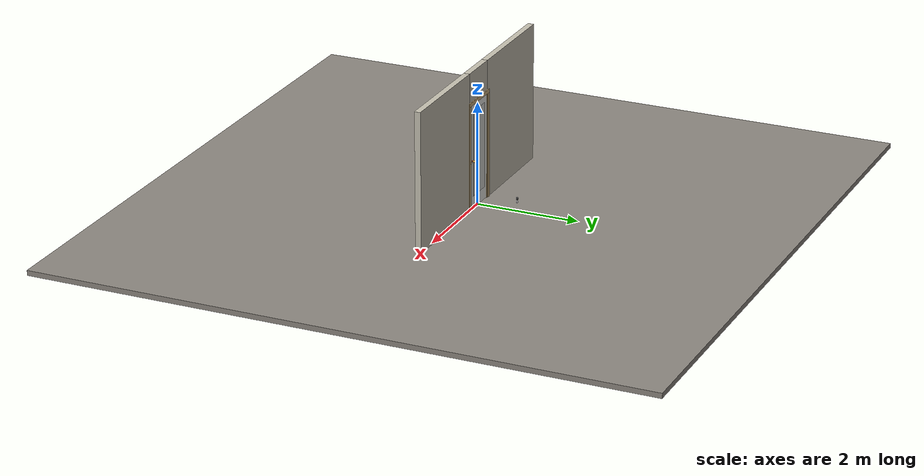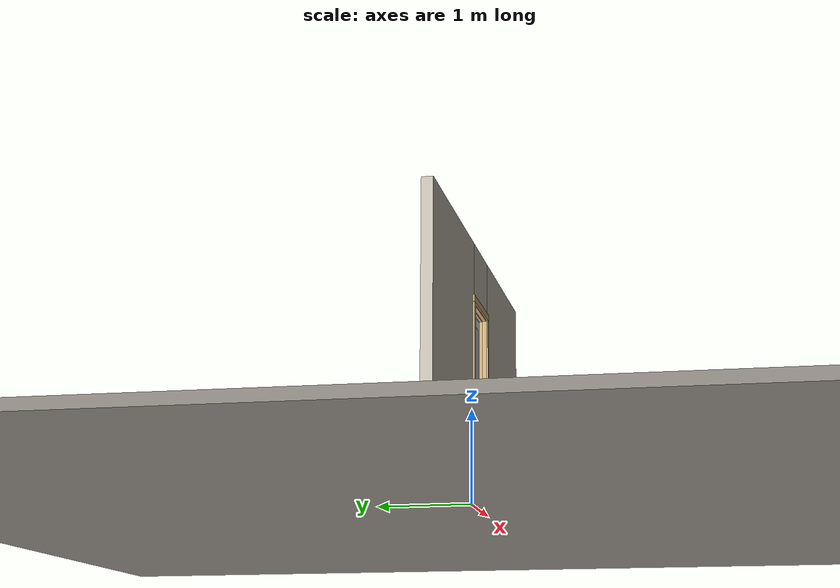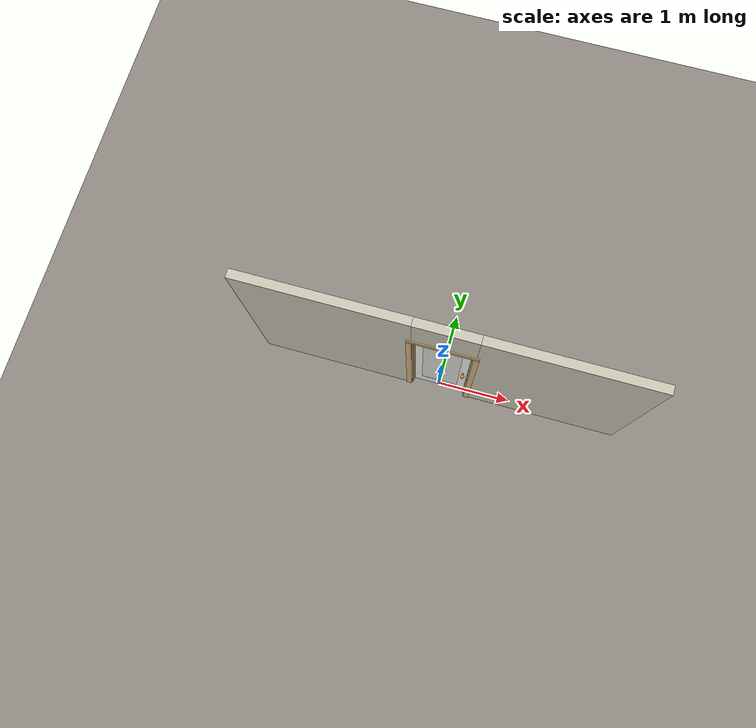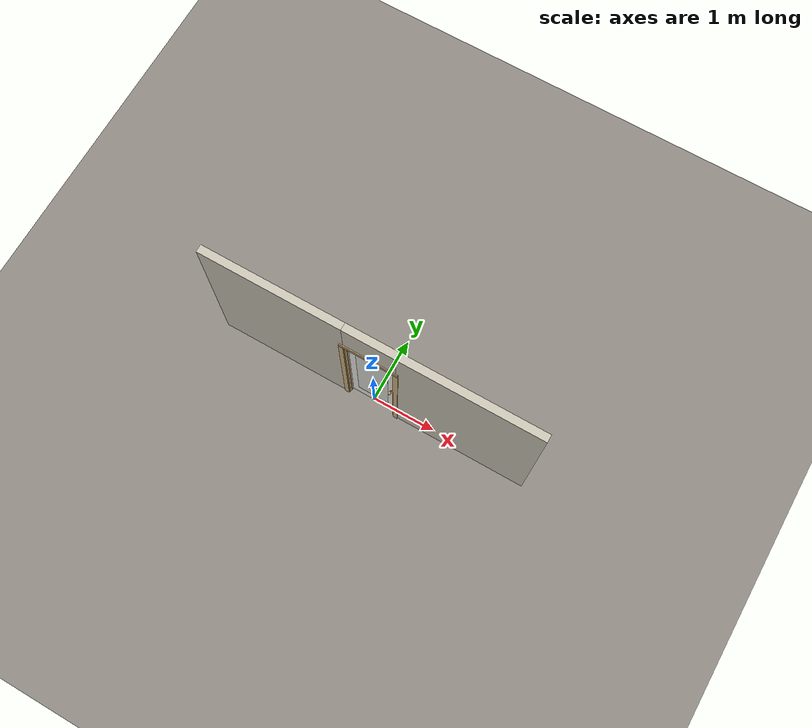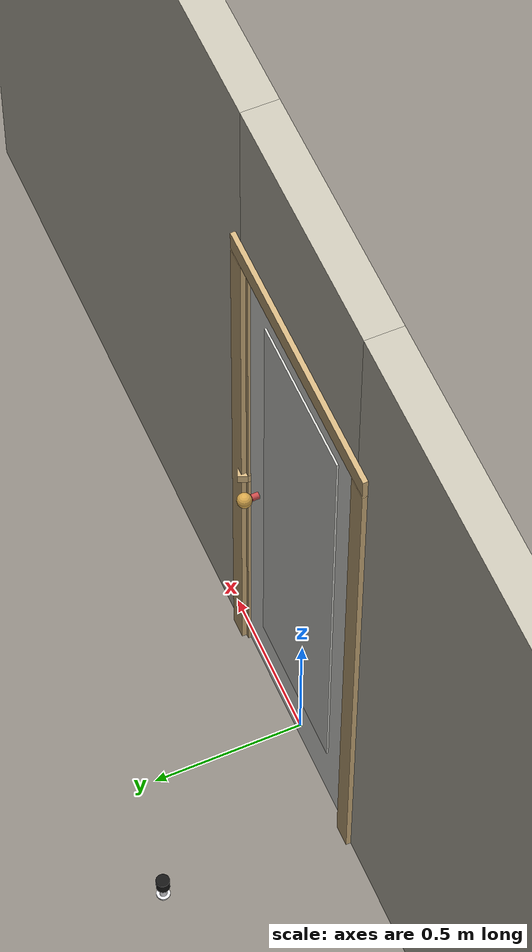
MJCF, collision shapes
<?xml version="1.0" ?>
<mujoco model="db0210_swing_single_full">
  <compiler angle="radian" meshdir="../../hardware" texturedir="../../textures" autolimits="true" inertiafromgeom="false"/>
  <option timestep="0.002" integrator="implicitfast" cone="elliptic" impratio="10" noslip_iterations="3">
    <flag multiccd="enable"/>
  </option>
  <size memory="16M"/>
  <default>
    <geom condim="4" solref="0.005 1" solimp="0.95 0.99 0.001"/>
    <joint solreflimit="0.005 1" solimplimit="0.95 0.99 0.001"/>
    <tendon solreflimit="0.005 1"/>
    <equality solref="0.002 1"/>
  </default>
  <visual>
    <headlight ambient="0.4 0.4 0.4" diffuse="0.7 0.7 0.7" specular="0.2 0.2 0.2"/>
    <quality shadowsize="4096"/>
    <map znear="0.01" zfar="60"/>
  </visual>
  <asset>
    <mesh name="hinge_96510cf394" file="hinge_96510cf394.obj"/>
    <mesh name="hinge_jamb_7fd4ca52b2" file="hinge_jamb_7fd4ca52b2.obj"/>
    <mesh name="knob_d1888f6f03" file="knob_d1888f6f03.obj"/>
    <material name="mat_floor" rgba="0.55 0.53 0.5 1" specular="0.2" shininess="0.15" reflectance="0"/>
    <material name="mat_wall" rgba="0.78 0.76 0.7 1" specular="0.2" shininess="0.1" reflectance="0"/>
    <material name="mat_leaf" rgba="0.93 0.93 0.91 1" specular="0.2" shininess="0.59" reflectance="0"/>
    <material name="mat_leaf_panel" rgba="0.856 0.856 0.837 1" specular="0.2" shininess="0.59" reflectance="0"/>
    <material name="mat_hinge" rgba="0.65 0.66 0.68 1" specular="0.74" shininess="0.5" reflectance="0.36"/>
    <material name="mat_op_brass" rgba="0.85 0.66 0.3 1" specular="0.8" shininess="0.75" reflectance="0.4"/>
    <material name="mat_trim" rgba="0.85 0.66 0.3 1" specular="0.8" shininess="0.75" reflectance="0.4"/>
    <material name="mat_bolt" rgba="0.85 0.66 0.3 1" specular="0.8" shininess="0.75" reflectance="0.4"/>
    <material name="mat_frame" rgba="0.82 0.7 0.5 1" specular="0.2" shininess="0.45" reflectance="0"/>
    <material name="mat_seal" rgba="0.1 0.1 0.1 1" specular="0.2" shininess="0.1" reflectance="0"/>
    <material name="mat_bumper_stop" rgba="0.08 0.08 0.08 1" specular="0.2" shininess="0.1" reflectance="0"/>
    <material name="mat_stop_base" rgba="0.9 0.9 0.92 1" specular="0.8" shininess="0.9" reflectance="0.4"/>
    <texture name="skybox" type="skybox" builtin="gradient" rgb1="0.6 0.7 0.85" rgb2="0.9 0.92 0.95" width="256" height="256"/>
  </asset>
  <worldbody>
    <light name="sun" pos="1.5 -2.5 4" dir="-0.3 0.5 -0.8" directional="true" diffuse="0.8 0.8 0.8" specular="0.3 0.3 0.3" castshadow="true"/>
    <light name="fill" pos="-1.5 2.5 3" dir="0.3 -0.5 -0.7" directional="true" diffuse="0.35 0.35 0.4" castshadow="false"/>
    <camera name="robot_view" pos="0 -2.575187 1.734312" xyaxes="1 0 0 0 0.26963 0.962964" fovy="52"/>
    <camera name="far_view" pos="0 2.509187 1.734312" xyaxes="-1 0 0 0 -0.26963 0.962964" fovy="52"/>
    <camera name="iso" pos="1.932062 -2.168438 2.141063" xyaxes="0.741536 0.670913 0 -0.242917 0.268487 0.932151" fovy="46"/>
    <camera name="detail_handle" pos="0.475 -0.864 1.245" xyaxes="0.97561 0.219512 0 -0.070934 0.315262 0.94635" fovy="38"/>
    <geom name="floor" type="box" size="6 6 0.05" pos="0 0 -0.05" material="mat_floor" group="0" contype="1" conaffinity="1" friction="0.8 0.005 0.0001" density="2400"/>
    <geom name="wall_left" type="box" size="1.061 0.0575 1.35" pos="-1.439 -0.033 1.35" material="mat_wall" group="0" contype="1" conaffinity="1" friction="0.6 0.005 0.0001" density="800"/>
    <geom name="wall_right" type="box" size="1.046 0.0575 1.35" pos="1.454 -0.033 1.35" material="mat_wall" group="0" contype="1" conaffinity="1" friction="0.6 0.005 0.0001" density="800"/>
    <geom name="wall_header" type="box" size="0.393 0.0575 0.303" pos="0.015 -0.033 2.397" material="mat_wall" group="0" contype="1" conaffinity="1" friction="0.6 0.005 0.0001" density="800"/>
    <geom name="hinge_0_jamb" type="mesh" mesh="hinge_jamb_7fd4ca52b2" pos="-0.356 0.0245 0.259" quat="0 1 0 0" material="mat_hinge" group="1" contype="0" conaffinity="0" density="7850"/>
    <geom name="hinge_1_jamb" type="mesh" mesh="hinge_jamb_7fd4ca52b2" pos="-0.356 0.0245 1.025" quat="0 1 0 0" material="mat_hinge" group="1" contype="0" conaffinity="0" density="7850"/>
    <geom name="hinge_2_jamb" type="mesh" mesh="hinge_jamb_7fd4ca52b2" pos="-0.356 0.0245 1.861" quat="0 1 0 0" material="mat_hinge" group="1" contype="0" conaffinity="0" density="7850"/>
    <geom name="jamb_hinge" type="box" size="0.0095 0.0575 1.0225" pos="-0.3685 -0.033 1.0225" material="mat_frame" group="0" contype="1" conaffinity="1" friction="0.6 0.005 0.0001" density="400"/>
    <geom name="strike_965_wall_n" type="box" size="0.0245 0.041325 0.0167" pos="0.3835 -0.049175 0.965" material="mat_frame" group="0" contype="1" conaffinity="1" friction="0.6 0.005 0.0001" density="400"/>
    <geom name="strike_965_wall_p" type="box" size="0.0245 0.008 0.0167" pos="0.3835 0.01585 0.965" material="mat_frame" group="0" contype="1" conaffinity="1" friction="0.6 0.005 0.0001" density="400"/>
    <geom name="strike_965_ramp" type="box" size="0.0245 0.01649 0.0167" pos="0.388136 0.028673 0.965" quat="0.977148 0 0 -0.212558" material="mat_frame" group="0" contype="1" conaffinity="1" friction="0.12 0.005 0.0001" density="400"/>
    <geom name="strike_965_back" type="box" size="0.01615 0.00785 0.0167" pos="0.39185 0 0.965" material="mat_frame" group="0" contype="1" conaffinity="1" friction="0.6 0.005 0.0001" density="400"/>
    <geom name="jamb_strike_0" type="box" size="0.0245 0.0575 0.47415" pos="0.3835 -0.033 0.47415" material="mat_frame" group="0" contype="1" conaffinity="1" friction="0.6 0.005 0.0001" density="400"/>
    <geom name="jamb_strike_1" type="box" size="0.0245 0.0575 0.53165" pos="0.3835 -0.033 1.51335" material="mat_frame" group="0" contype="1" conaffinity="1" friction="0.6 0.005 0.0001" density="400"/>
    <geom name="jamb_head" type="box" size="0.393 0.0575 0.0095" pos="0.015 -0.033 2.0545" material="mat_frame" group="0" contype="1" conaffinity="1" friction="0.6 0.005 0.0001" density="400"/>
    <geom name="head_stud" type="box" size="0.393 0.0575 0.015" pos="0.015 -0.033 2.079" material="mat_wall" group="0" contype="1" conaffinity="1" friction="0.6 0.005 0.0001" density="500"/>
    <geom name="stop_hinge" type="box" size="0.0055 0.016 1.0225" pos="-0.3535 -0.034 1.0225" material="mat_frame" group="0" contype="1" conaffinity="1" friction="0.6 0.005 0.0001" density="400"/>
    <geom name="stop_strike" type="box" size="0.0055 0.016 1.0225" pos="0.3535 -0.034 1.0225" material="mat_frame" group="0" contype="1" conaffinity="1" friction="0.6 0.005 0.0001" density="400"/>
    <geom name="stop_head" type="box" size="0.359 0.016 0.0055" pos="0 -0.034 2.0395" material="mat_frame" group="0" contype="1" conaffinity="1" friction="0.6 0.005 0.0001" density="400"/>
    <geom name="seal_hinge" type="box" size="0.004 0.0015 1.0225" pos="-0.356 -0.019 1.0225" material="mat_seal" group="1" contype="0" conaffinity="0" density="1100"/>
    <geom name="seal_strike" type="box" size="0.004 0.0015 1.0225" pos="0.356 -0.019 1.0225" material="mat_seal" group="1" contype="0" conaffinity="0" density="1100"/>
    <geom name="seal_head" type="box" size="0.339 0.0015 0.008" pos="0 -0.019 2.033" material="mat_seal" group="1" contype="0" conaffinity="0" density="1100"/>
    <geom name="casing_l_n" type="box" size="0.035 0.008 1.032" pos="-0.408 -0.0985 1.0225" material="mat_frame" group="2" contype="0" conaffinity="0" density="400"/>
    <geom name="casing_r_n" type="box" size="0.035 0.008 1.032" pos="0.408 -0.0985 1.0225" material="mat_frame" group="2" contype="0" conaffinity="0" density="400"/>
    <geom name="casing_h_n" type="box" size="0.443 0.008 0.035" pos="0 -0.0985 2.094" material="mat_frame" group="2" contype="0" conaffinity="0" density="400"/>
    <geom name="casing_l_p" type="box" size="0.035 0.008 1.032" pos="-0.408 0.0325 1.0225" material="mat_frame" group="2" contype="0" conaffinity="0" density="400"/>
    <geom name="casing_r_p" type="box" size="0.035 0.008 1.032" pos="0.408 0.0325 1.0225" material="mat_frame" group="2" contype="0" conaffinity="0" density="400"/>
    <geom name="casing_h_p" type="box" size="0.443 0.008 0.035" pos="0 0.0325 2.094" material="mat_frame" group="2" contype="0" conaffinity="0" density="400"/>
    <geom name="door_stop_base" type="cylinder" size="0.022 0.003" pos="-0.372 0.62885 0.003" material="mat_stop_base" group="0" contype="1" conaffinity="1" friction="0.6 0.005 0.0001" density="7850"/>
    <geom name="door_stop_post" type="cylinder" size="0.012 0.0245" pos="-0.372 0.62885 0.0305" material="mat_stop_base" group="0" contype="1" conaffinity="1" friction="0.6 0.005 0.0001" density="7850"/>
    <geom name="door_stop_bumper" type="cylinder" size="0.022 0.02" pos="-0.372 0.62885 0.075" material="mat_bumper_stop" group="0" contype="1" conaffinity="1" friction="0.6 0.005 0.0001" density="1100"/>
    <site name="approach_point" pos="0 -1.5 0" quat="1 0 0 0" size="0.05" rgba="0.2 0.9 0.2 0.5" group="4"/>
    <site name="goal_point" pos="0 1.5 0" quat="1 0 0 0" size="0.05" rgba="0.2 0.9 0.2 0.5" group="4"/>
    <site name="door_plane_center" pos="0 0 1.0225" quat="1 0 0 0" size="0.02" rgba="0.2 0.9 0.2 0.5" group="4"/>
    <body name="leaf" pos="-0.359 0 0">
      <inertial pos="0.354313 0.000178 1.025277" mass="33.479472" quat="0.500277 0.499544 -0.50045 0.499729" diaginertia="1.448701359 11.552341187 12.993984666"/>
      <joint name="leaf_hinge" type="hinge" axis="0 0 1" pos="0.003 0.0245 0" limited="true" range="0 1.570796" solreflimit="0.02 1" damping="0.143782" frictionloss="0.820995" armature="0.02"/>
      <geom name="leaf_slab" type="box" size="0.3555 0.0175 1.016" pos="0.3585 0 1.025" material="mat_leaf" group="0" contype="1" conaffinity="1" friction="0.4 0.005 0.0001" density="1"/>
      <geom name="leaf_panel_0_n" type="box" size="0.2455 0.003 0.83344" pos="0.3585 -0.0205 1.08596" material="mat_leaf_panel" group="1" contype="0" conaffinity="0" density="1"/>
      <geom name="leaf_panel_0_p" type="box" size="0.2455 0.003 0.83344" pos="0.3585 0.0205 1.08596" material="mat_leaf_panel" group="1" contype="0" conaffinity="0" density="1"/>
      <geom name="hinge_0" type="mesh" mesh="hinge_96510cf394" pos="0.003 0.0245 0.259" quat="0 1 0 0" material="mat_hinge" group="1" contype="0" conaffinity="0" density="7850"/>
      <geom name="hinge_1" type="mesh" mesh="hinge_96510cf394" pos="0.003 0.0245 1.025" quat="0 1 0 0" material="mat_hinge" group="1" contype="0" conaffinity="0" density="7850"/>
      <geom name="hinge_2" type="mesh" mesh="hinge_96510cf394" pos="0.003 0.0245 1.861" quat="0 1 0 0" material="mat_hinge" group="1" contype="0" conaffinity="0" density="7850"/>
      <geom name="leaf_latch_bolt_faceplate" type="box" size="0.0006 0.01235 0.0267" pos="0.7134 0 0.965" material="mat_bolt" group="1" contype="0" conaffinity="0" density="8500"/>
      <site name="leaf_edge_mid" pos="0.714 0 1.016" quat="1 0 0 0" size="0.02" rgba="0.2 0.9 0.2 0.5" group="4"/>
      <body name="leaf_handle" pos="0.654 0 0.965">
        <inertial pos="0 -0.000435 0" mass="1.149538" quat="-0.5 0.5 -0.5 0.5" diaginertia="0.00031244 0.003750924 0.003750924"/>
        <joint name="leaf_handle_hinge" type="hinge" axis="0 -1 0" limited="true" range="0 0.87" damping="0.143614" frictionloss="0.038" stiffness="0.5" springref="-0.5" armature="0.01"/>
        <geom name="leaf_handle_spindle" type="cylinder" size="0.006 0.0255" pos="0 0 0" quat="0.707107 -0.707107 0 0" material="mat_op_brass" group="1" contype="0" conaffinity="0" density="7850"/>
        <geom name="leaf_handle_knob_n" type="mesh" mesh="knob_d1888f6f03" pos="0 -0.0175 0" quat="0.707107 0.707107 0 0" material="mat_op_brass" group="1" contype="0" conaffinity="0" density="3000"/>
        <geom name="leaf_handle_knob_col_n" type="sphere" size="0.0243" pos="0 -0.064 0" material="mat_op_brass" group="0" contype="1" conaffinity="1" friction="0.9 0.01 0.0001" density="3000"/>
        <geom name="leaf_handle_knob_neck_n" type="cylinder" size="0.011 0.012" pos="0 -0.0295 0" quat="0.707107 -0.707107 0 0" material="mat_op_brass" group="3" contype="1" conaffinity="1" rgba="0.8 0.3 0.3 0.25" friction="0.6 0.005 0.0001" density="3000"/>
        <geom name="leaf_handle_turn_button_n" type="cylinder" size="0.005 0.005" pos="0 -0.0896 0" quat="0.707107 -0.707107 0 0" material="mat_trim" group="1" contype="0" conaffinity="0" density="7100"/>
        <geom name="leaf_handle_knob_p" type="mesh" mesh="knob_d1888f6f03" pos="0 0.0175 0" quat="-0.707107 0.707107 0 0" material="mat_op_brass" group="1" contype="0" conaffinity="0" density="3000"/>
        <geom name="leaf_handle_knob_col_p" type="sphere" size="0.0243" pos="0 0.064 0" material="mat_op_brass" group="0" contype="1" conaffinity="1" friction="0.9 0.01 0.0001" density="3000"/>
        <geom name="leaf_handle_knob_neck_p" type="cylinder" size="0.011 0.012" pos="0 0.0295 0" quat="0.707107 -0.707107 0 0" material="mat_op_brass" group="3" contype="1" conaffinity="1" rgba="0.8 0.3 0.3 0.25" friction="0.6 0.005 0.0001" density="3000"/>
        <site name="leaf_handle_grip_n" pos="0 -0.064 0" quat="1 0 0 0" size="0.012" rgba="0.2 0.9 0.2 0.5" group="4"/>
        <site name="leaf_handle_grip_p" pos="0 0.064 0" quat="1 0 0 0" size="0.012" rgba="0.2 0.9 0.2 0.5" group="4"/>
      </body>
      <body name="leaf_latch_bolt" pos="0.714 0 0.965">
        <inertial pos="-0.00865 0 0" mass="0.041419" quat="0.92388 -0.382683 0 0" diaginertia="0.000000798 0.000005598 0.000005598"/>
        <joint name="leaf_latch_bolt_slide" type="slide" axis="-1 0 0" limited="true" range="0 0.0127" damping="2" frictionloss="0.3" stiffness="300" springref="-0.008333" armature="0.1"/>
        <geom name="leaf_latch_bolt_capsule" type="capsule" size="0.00635 0.015" pos="-0.00865 0 0" quat="0.707107 0 0.707107 0" material="mat_bolt" group="0" contype="1" conaffinity="1" friction="0.2 0.005 0.0001" density="8500"/>
      </body>
    </body>
  </worldbody>
  <tendon>
    <fixed name="leaf_latch_bolt_coupling" limited="true" range="0 10">
      <joint joint="leaf_latch_bolt_slide" coef="1"/>
      <joint joint="leaf_handle_hinge" coef="-0.015679"/>
    </fixed>
  </tendon>
  <sensor>
    <jointpos name="leaf_hinge_pos" joint="leaf_hinge"/>
    <jointvel name="leaf_hinge_vel" joint="leaf_hinge"/>
    <jointpos name="leaf_handle_hinge_pos" joint="leaf_handle_hinge"/>
    <jointvel name="leaf_handle_hinge_vel" joint="leaf_handle_hinge"/>
    <jointpos name="leaf_latch_bolt_slide_pos" joint="leaf_latch_bolt_slide"/>
    <jointvel name="leaf_latch_bolt_slide_vel" joint="leaf_latch_bolt_slide"/>
  </sensor>
</mujoco>
